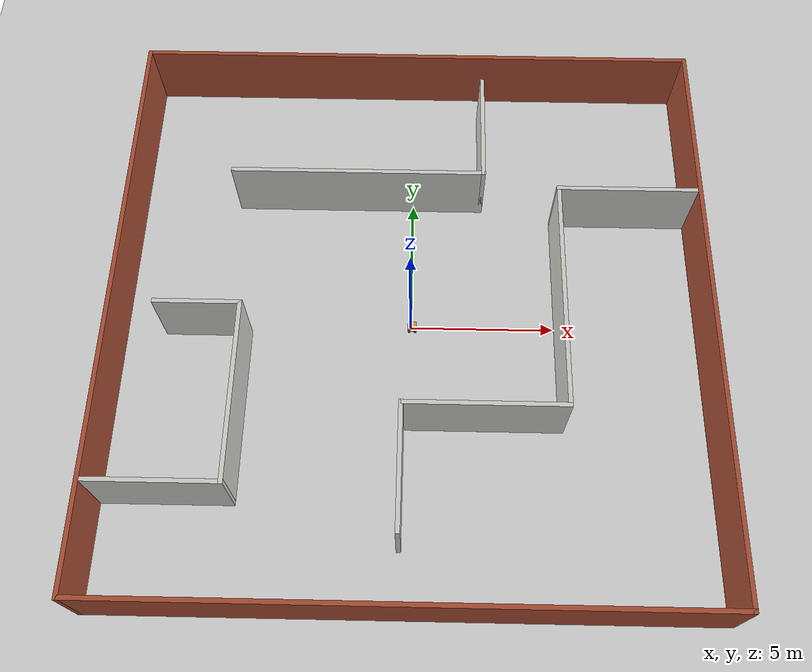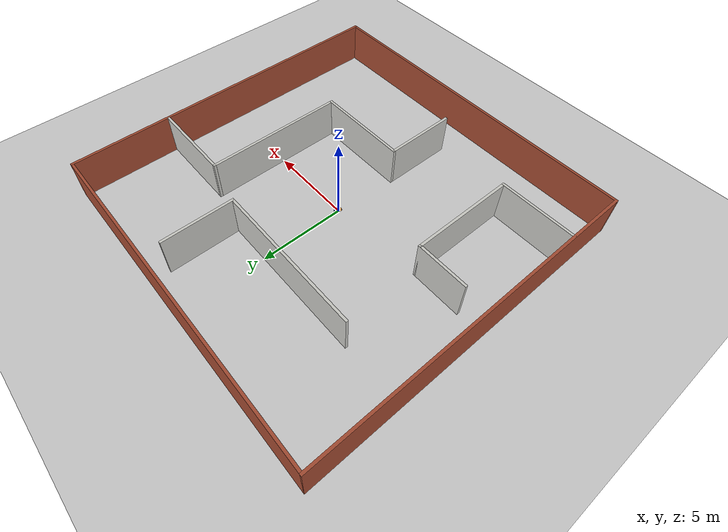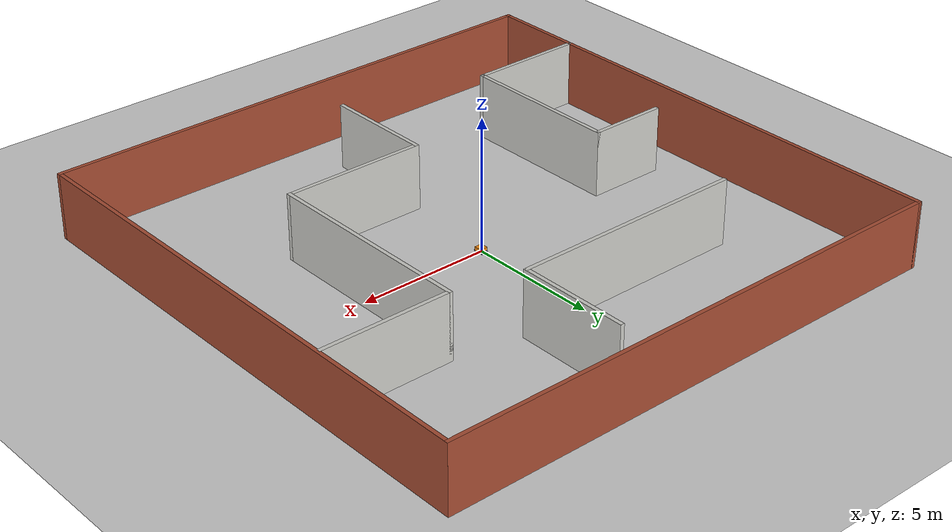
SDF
<sdf version="1.7">
 <world name="default">
  <light name="sun" type="directional">
   <pose>0 0 10 0 -0 0</pose>
   <diffuse>0.8 0.8 0.8 1</diffuse>
   <specular>0.2 0.2 0.2 1</specular>
   <attenuation>
    <range>1000</range>
    <constant>0.9</constant>
    <linear>0.01</linear>
    <quadratic>0.001</quadratic>
   </attenuation>
   <direction>-0.5 0.1 -0.9</direction>
   <spot><inner_angle>0</inner_angle><outer_angle>0</outer_angle><falloff>0</falloff></spot>
  </light>
  <model name="ground_plane">
   <static>1</static>
   <link name="link">
    <collision name="collision">
     <geometry><plane><normal>0 0 1</normal><size>100 100</size></plane></geometry>
     <surface>
      <contact><collide_bitmask>65535</collide_bitmask></contact>
      <friction><ode><mu>100</mu><mu2>50</mu2></ode></friction>
     </surface>
    </collision>
    <visual name="visual">
     <cast_shadows>0</cast_shadows>
     <geometry><plane><normal>0 0 1</normal><size>100 100</size></plane></geometry>
     <material>
      <script><uri>file://media/materials/scripts/gazebo.material</uri><name>Gazebo/Grey</name></script>
     </material>
    </visual>
   </link>
  </model>
  <gravity>0 0 -9.8</gravity>
  <magnetic_field>6e-06 2.3e-05 -4.2e-05</magnetic_field>
  <atmosphere type="adiabatic"/>
  <physics type="ode">
   <max_step_size>0.001</max_step_size>
   <real_time_factor>1</real_time_factor>
   <real_time_update_rate>1000</real_time_update_rate>
  </physics>
  <scene><ambient>0.4 0.4 0.4 1</ambient><background>0.7 0.7 0.7 1</background><shadows>1</shadows></scene>
  <audio><device>default</device></audio>
  <spherical_coordinates>
   <surface_model>EARTH_WGS84</surface_model>
   <latitude_deg>0</latitude_deg>
   <longitude_deg>0</longitude_deg>
   <elevation>0</elevation>
   <heading_deg>0</heading_deg>
  </spherical_coordinates>
  <model name="mapokela">
   <pose>0.014826 0.1045 0 0 -0 0</pose>
   <link name="Wall_1">
    <collision name="Wall_1_Collision">
     <geometry><box><size>20.25 0.15 2.5</size></box></geometry>
     <pose>0 0 1.25 0 -0 0</pose>
    </collision>
    <visual name="Wall_1_Visual">
     <pose>0 0 1.25 0 -0 0</pose>
     <geometry><box><size>20.25 0.15 2.5</size></box></geometry>
     <material>
      <script><uri>file://media/materials/scripts/gazebo.material</uri><name>Gazebo/Bricks</name></script>
      <ambient>1 1 1 1</ambient>
     </material>
     <meta><layer>0</layer></meta>
    </visual>
    <pose>-0 10.05 0 0 -0 0</pose>
   </link>
   <link name="Wall_10">
    <collision name="Wall_10_Collision">
     <geometry><box><size>3 0.15 2.5</size></box></geometry>
     <pose>0 0 1.25 0 -0 0</pose>
    </collision>
    <visual name="Wall_10_Visual">
     <pose>0 0 1.25 0 -0 0</pose>
     <geometry><box><size>3 0.15 2.5</size></box></geometry>
     <material>
      <script><uri>file://media/materials/scripts/gazebo.material</uri><name>Gazebo/CeilingTiled</name></script>
      <ambient>0.435294 0.796078 0.67451 1</ambient>
     </material>
     <meta><layer>0</layer></meta>
    </visual>
    <pose>-7.09059 -0.435326 0 0 -0 3.14159</pose>
   </link>
   <link name="Wall_12">
    <collision name="Wall_12_Collision">
     <geometry><box><size>8.25 0.15 2.5</size></box></geometry>
     <pose>0 0 1.25 0 -0 0</pose>
    </collision>
    <visual name="Wall_12_Visual">
     <pose>0 0 1.25 0 -0 0</pose>
     <geometry><box><size>8.25 0.15 2.5</size></box></geometry>
     <material>
      <script><uri>file://media/materials/scripts/gazebo.material</uri><name>Gazebo/CeilingTiled</name></script>
      <ambient>0.760784 0.662745 0.627451 1</ambient>
     </material>
     <meta><layer>0</layer></meta>
    </visual>
    <pose>5.0956 0.20752 0 0 -0 -1.5708</pose>
   </link>
   <link name="Wall_13">
    <collision name="Wall_13_Collision">
     <geometry><box><size>5.5 0.15 2.5</size></box></geometry>
     <pose>0 0 1.25 0 -0 0</pose>
    </collision>
    <visual name="Wall_13_Visual">
     <pose>0 0 1.25 0 -0 0</pose>
     <geometry><box><size>5.5 0.15 2.5</size></box></geometry>
     <material>
      <script><uri>file://media/materials/scripts/gazebo.material</uri><name>Gazebo/CeilingTiled</name></script>
      <ambient>0.760784 0.662745 0.627451 1</ambient>
     </material>
     <meta><layer>0</layer></meta>
    </visual>
    <pose>2.4206 -3.84248 0 0 -0 3.14159</pose>
   </link>
   <link name="Wall_14">
    <collision name="Wall_14_Collision">
     <geometry><box><size>4.25 0.15 2.5</size></box></geometry>
     <pose>0 0 1.25 0 -0 0</pose>
    </collision>
    <visual name="Wall_14_Visual">
     <pose>0 0 1.25 0 -0 0</pose>
     <geometry><box><size>4.25 0.15 2.5</size></box></geometry>
     <material>
      <script><uri>file://media/materials/scripts/gazebo.material</uri><name>Gazebo/CeilingTiled</name></script>
      <ambient>0.760784 0.662745 0.627451 1</ambient>
     </material>
     <meta><layer>0</layer></meta>
    </visual>
    <pose>-0.254404 -5.89248 0 0 -0 -1.5708</pose>
   </link>
   <link name="Wall_16">
    <collision name="Wall_16_Collision">
     <geometry><box><size>9 0.15 2.5</size></box></geometry>
     <pose>0 0 1.25 0 -0 0</pose>
    </collision>
    <visual name="Wall_16_Visual">
     <pose>0 0 1.25 0 -0 0</pose>
     <geometry><box><size>9 0.15 2.5</size></box></geometry>
     <material>
      <script><uri>file://media/materials/scripts/gazebo.material</uri><name>Gazebo/CeilingTiled</name></script>
      <ambient>0.2 0.819608 0.478431 1</ambient>
     </material>
     <meta><layer>0</layer></meta>
    </visual>
    <pose>-1.96879 4.8239 0 0 -0 0</pose>
   </link>
   <link name="Wall_17">
    <collision name="Wall_17_Collision">
     <geometry><box><size>4.25 0.15 2.5</size></box></geometry>
     <pose>0 0 1.25 0 -0 0</pose>
    </collision>
    <visual name="Wall_17_Visual">
     <pose>0 0 1.25 0 -0 0</pose>
     <geometry><box><size>4.25 0.15 2.5</size></box></geometry>
     <material>
      <script><uri>file://media/materials/scripts/gazebo.material</uri><name>Gazebo/CeilingTiled</name></script>
      <ambient>0.2 0.819608 0.478431 1</ambient>
     </material>
     <meta><layer>0</layer></meta>
    </visual>
    <pose>2.45621 6.8739 0 0 -0 1.5708</pose>
   </link>
   <link name="Wall_19">
    <collision name="Wall_19_Collision">
     <geometry><box><size>5 0.15 2.5</size></box></geometry>
     <pose>0 0 1.25 0 -0 0</pose>
    </collision>
    <visual name="Wall_19_Visual">
     <pose>0 0 1.25 0 -0 0</pose>
     <geometry><box><size>5 0.15 2.5</size></box></geometry>
     <material>
      <script><uri>file://media/materials/scripts/gazebo.material</uri><name>Gazebo/CeilingTiled</name></script>
      <ambient>1 1 1 1</ambient>
     </material>
     <meta><layer>0</layer></meta>
    </visual>
    <pose>7.5206 4.25752 0 0 -0 0</pose>
   </link>
   <link name="Wall_3">
    <collision name="Wall_3_Collision">
     <geometry><box><size>20.25 0.15 2.5</size></box></geometry>
     <pose>0 0 1.25 0 -0 0</pose>
    </collision>
    <visual name="Wall_3_Visual">
     <pose>0 0 1.25 0 -0 0</pose>
     <geometry><box><size>20.25 0.15 2.5</size></box></geometry>
     <material>
      <script><uri>file://media/materials/scripts/gazebo.material</uri><name>Gazebo/Bricks</name></script>
      <ambient>1 1 1 1</ambient>
     </material>
     <meta><layer>0</layer></meta>
    </visual>
    <pose>10.05 0 0 0 -0 -1.5708</pose>
   </link>
   <link name="Wall_4">
    <collision name="Wall_4_Collision">
     <geometry><box><size>20.25 0.15 2.5</size></box></geometry>
     <pose>0 0 1.25 0 -0 0</pose>
    </collision>
    <visual name="Wall_4_Visual">
     <pose>0 0 1.25 0 -0 0</pose>
     <geometry><box><size>20.25 0.15 2.5</size></box></geometry>
     <material>
      <script><uri>file://media/materials/scripts/gazebo.material</uri><name>Gazebo/Bricks</name></script>
      <ambient>1 1 1 1</ambient>
     </material>
     <meta><layer>0</layer></meta>
    </visual>
    <pose>-0 -10.05 0 0 -0 3.14159</pose>
   </link>
   <link name="Wall_5">
    <collision name="Wall_5_Collision">
     <geometry><box><size>20.25 0.15 2.5</size></box></geometry>
     <pose>0 0 1.25 0 -0 0</pose>
    </collision>
    <visual name="Wall_5_Visual">
     <pose>0 0 1.25 0 -0 0</pose>
     <geometry><box><size>20.25 0.15 2.5</size></box></geometry>
     <material>
      <script><uri>file://media/materials/scripts/gazebo.material</uri><name>Gazebo/Bricks</name></script>
      <ambient>1 1 1 1</ambient>
     </material>
     <meta><layer>0</layer></meta>
    </visual>
    <pose>-10.05 0 0 0 -0 1.5708</pose>
   </link>
   <link name="Wall_7">
    <collision name="Wall_7_Collision">
     <geometry><box><size>6.25 0.15 2.5</size></box></geometry>
     <pose>0 0 1.25 0 -0 0</pose>
    </collision>
    <visual name="Wall_7_Visual">
     <pose>0 0 1.25 0 -0 0</pose>
     <geometry><box><size>6.25 0.15 2.5</size></box></geometry>
     <material>
      <script><uri>file://media/materials/scripts/gazebo.material</uri><name>Gazebo/CeilingTiled</name></script>
      <ambient>0.435294 0.796078 0.67451 1</ambient>
     </material>
     <meta><layer>0</layer></meta>
    </visual>
    <pose>-5.66559 -3.48533 0 0 -0 -1.5708</pose>
   </link>
   <link name="Wall_8">
    <collision name="Wall_8_Collision">
     <geometry><box><size>4.5 0.15 2.5</size></box></geometry>
     <pose>0 0 1.25 0 -0 0</pose>
    </collision>
    <visual name="Wall_8_Visual">
     <pose>0 0 1.25 0 -0 0</pose>
     <geometry><box><size>4.5 0.15 2.5</size></box></geometry>
     <material>
      <script><uri>file://media/materials/scripts/gazebo.material</uri><name>Gazebo/CeilingTiled</name></script>
      <ambient>0.435294 0.796078 0.67451 1</ambient>
     </material>
     <meta><layer>0</layer></meta>
    </visual>
    <pose>-7.84059 -6.53533 0 0 -0 3.14159</pose>
   </link>
   <static>1</static>
  </model>
  <model name="robot_cua_hoang">
   <link name="base_link">
    <inertial>
     <pose>0.057143 0 0.078571 0 -0 0</pose>
     <mass>0.7</mass>
     <inertia>
      <ixx>0.00941024</ixx>
      <ixy>0</ixy>
      <ixz>0.00126786</ixz>
      <iyy>0.00758869</iyy>
      <iyz>3.77703e-21</iyz>
      <izz>0.0119101</izz>
     </inertia>
    </inertial>
    <collision name="base_link_fixed_joint_lump__chassis_collision">
     <pose>0.05 0 0.075 0 -0 0</pose>
     <geometry><box><size>0.3 0.3 0.15</size></box></geometry>
    </collision>
    <collision name="base_link_fixed_joint_lump__laser_frame_collision_1">
     <pose>0 0 0.175 0 -0 0</pose>
     <geometry><cylinder><length>0.04</length><radius>0.04</radius></cylinder></geometry>
    </collision>
    <collision name="base_link_fixed_joint_lump__front_support_wheel_collision_2">
     <pose>0.15 0.175 0 -1.5708 0 0</pose>
     <geometry><cylinder><length>0.04</length><radius>0.04</radius></cylinder></geometry>
     <surface><friction><ode><mu>0.001</mu><mu2>0.001</mu2></ode></friction></surface>
    </collision>
    <collision name="base_link_fixed_joint_lump__rear_support_wheel_collision_3">
     <pose>0.15 -0.175 0 -1.5708 0 0</pose>
     <geometry><cylinder><length>0.04</length><radius>0.04</radius></cylinder></geometry>
     <surface><friction><ode><mu>0.001</mu><mu2>0.001</mu2></ode></friction></surface>
    </collision>
    <visual name="base_link_fixed_joint_lump__chassis_visual">
     <pose>0.05 0 0.075 0 -0 0</pose>
     <geometry><box><size>0.3 0.3 0.15</size></box></geometry>
     <material>
      <script><name>Gazebo/Orange</name><uri>file://media/materials/scripts/gazebo.material</uri></script>
     </material>
    </visual>
    <visual name="base_link_fixed_joint_lump__laser_frame_visual_1">
     <pose>0 0 0.175 0 -0 0</pose>
     <geometry><cylinder><length>0.04</length><radius>0.04</radius></cylinder></geometry>
     <material>
      <script><name>Gazebo/Red</name><uri>file://media/materials/scripts/gazebo.material</uri></script>
     </material>
    </visual>
    <visual name="base_link_fixed_joint_lump__front_support_wheel_visual_2">
     <pose>0.15 0.175 0 -1.5708 0 0</pose>
     <geometry><cylinder><length>0.04</length><radius>0.04</radius></cylinder></geometry>
     <material>
      <script><name>Gazebo/Blue</name><uri>file://media/materials/scripts/gazebo.material</uri></script>
     </material>
    </visual>
    <visual name="base_link_fixed_joint_lump__rear_support_wheel_visual_3">
     <pose>0.15 -0.175 0 -1.5708 0 0</pose>
     <geometry><cylinder><length>0.04</length><radius>0.04</radius></cylinder></geometry>
     <material>
      <script><name>Gazebo/Blue</name><uri>file://media/materials/scripts/gazebo.material</uri></script>
     </material>
    </visual>
    <sensor name="laser" type="ray">
     <visualize>1</visualize>
     <update_rate>10</update_rate>
     <ray>
      <scan>
       <horizontal>
        <samples>360</samples>
        <min_angle>-3.14</min_angle>
        <max_angle>3.14</max_angle>
        <resolution>1</resolution>
       </horizontal>
       <vertical><samples>1</samples><min_angle>0</min_angle><max_angle>0</max_angle></vertical>
      </scan>
      <range><min>0.3</min><max>12</max></range>
     </ray>
     <plugin name="laser_controller" filename="libgazebo_ros_ray_sensor.so">
      <ros><argument>~/out:=scan</argument></ros>
      <output_type>sensor_msgs/LaserScan</output_type>
      <frame_name>laser_frame</frame_name>
     </plugin>
     <pose>0 0 0.175 0 -0 0</pose>
    </sensor>
   </link>
   <joint name="left_wheel_joint" type="revolute">
    <pose relative_to="base_link">-0.05 0.175 0 -1.5708 0 0</pose>
    <parent>base_link</parent>
    <child>left_wheel</child>
    <axis>
     <xyz>0 0 1</xyz>
     <limit><lower>-1e+16</lower><upper>1e+16</upper></limit>
     <dynamics><spring_reference>0</spring_reference><spring_stiffness>0</spring_stiffness></dynamics>
    </axis>
   </joint>
   <link name="left_wheel">
    <pose relative_to="left_wheel_joint">0 0 0 0 -0 0</pose>
    <inertial>
     <mass>0.1</mass>
     <inertia>
      <ixx>5.33333e-05</ixx>
      <ixy>0</ixy>
      <ixz>0</ixz>
      <iyy>5.33333e-05</iyy>
      <iyz>0</iyz>
      <izz>8e-05</izz>
     </inertia>
    </inertial>
    <collision name="left_wheel_collision">
     <geometry><cylinder><length>0.04</length><radius>0.04</radius></cylinder></geometry>
    </collision>
    <visual name="left_wheel_visual">
     <geometry><cylinder><length>0.04</length><radius>0.04</radius></cylinder></geometry>
     <material>
      <script><name>Gazebo/Blue</name><uri>file://media/materials/scripts/gazebo.material</uri></script>
     </material>
    </visual>
   </link>
   <joint name="right_wheel_joint" type="revolute">
    <pose relative_to="base_link">-0.05 -0.175 0 1.5708 -0 0</pose>
    <parent>base_link</parent>
    <child>right_wheel</child>
    <axis>
     <xyz>0 0 -1</xyz>
     <limit><lower>-1e+16</lower><upper>1e+16</upper></limit>
     <dynamics><spring_reference>0</spring_reference><spring_stiffness>0</spring_stiffness></dynamics>
    </axis>
   </joint>
   <link name="right_wheel">
    <pose relative_to="right_wheel_joint">0 0 0 0 -0 0</pose>
    <inertial>
     <mass>0.1</mass>
     <inertia>
      <ixx>5.33333e-05</ixx>
      <ixy>0</ixy>
      <ixz>0</ixz>
      <iyy>5.33333e-05</iyy>
      <iyz>0</iyz>
      <izz>8e-05</izz>
     </inertia>
    </inertial>
    <collision name="right_wheel_collision">
     <geometry><cylinder><length>0.04</length><radius>0.04</radius></cylinder></geometry>
    </collision>
    <visual name="right_wheel_visual">
     <geometry><cylinder><length>0.04</length><radius>0.04</radius></cylinder></geometry>
     <material>
      <script><name>Gazebo/Blue</name><uri>file://media/materials/scripts/gazebo.material</uri></script>
     </material>
    </visual>
   </link>
   <static>0</static>
   <plugin name="diff_drive" filename="libgazebo_ros_diff_drive.so">
    <left_joint>left_wheel_joint</left_joint>
    <right_joint>right_wheel_joint</right_joint>
    <wheel_separation>0.35</wheel_separation>
    <wheel_diameter>0.08</wheel_diameter>
    <max_wheel_torque>200</max_wheel_torque>
    <max_wheel_acceleration>10.0</max_wheel_acceleration>
    <odometry_frame>odom</odometry_frame>
    <robot_base_frame>base_link</robot_base_frame>
    <publish_odom>1</publish_odom>
    <publish_odom_tf>1</publish_odom_tf>
    <publish_wheel_tf>1</publish_wheel_tf>
   </plugin>
   <pose>0.000637 0.000171 0.04 -0 1e-06 -0.000809</pose>
  </model>
 </world>
</sdf>
